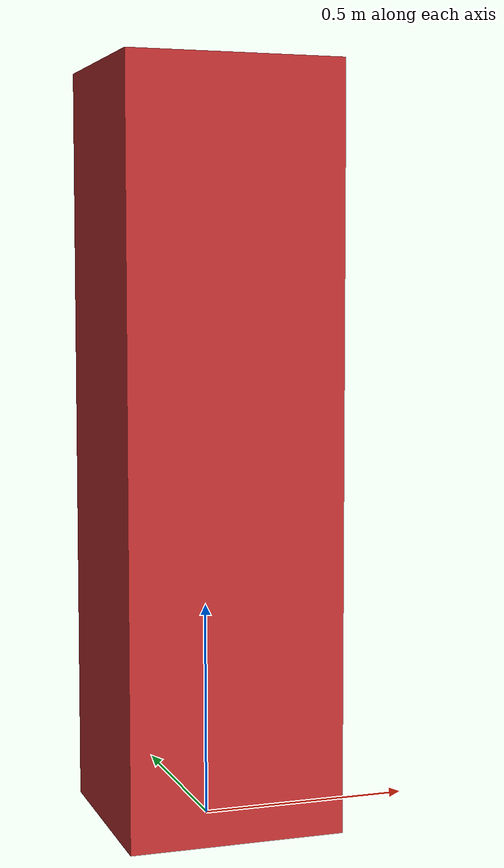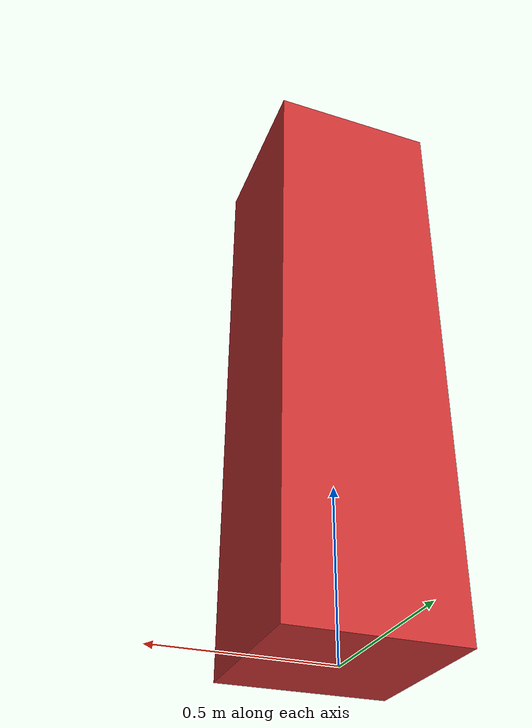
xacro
<!-- 行人 -->
<robot xmlns:xacro="http://www.ros.org/wiki/xacro" name="obs_person">
    <!-- 颜色 -->
    <material name="red">
        <color rgba="0.8 0.2 0.2 0.9"/>
    </material>

    <!-- 根坐标 -->
    <link name="map"/>

    <!-- 障碍行人生成函数, 参数: id号, 长宽高-->
    <xacro:macro name="create_obs_person" params="id person_length person_width person_height color">
        <!-- 底盘在map的投影点 -->
        <link name="base_footprint_person${id}"/>

        <!-- 底盘 -->
        <link name="base_link_person${id}">
            <visual>
                <geometry>
                    <box size="${person_length} ${person_width} ${person_height}"/>
                </geometry>
                <material name="${color}"/>
            </visual>
        </link>

        <!-- 投影点关联到地图 -->
        <joint name="footprint_person${id}_to_map" type="fixed">
            <parent link="map"/>
            <child link="base_footprint_person${id}"/>
        </joint>

        <!-- 底盘关联到投影点 -->
        <joint name="base_person${id}_to_footprint${id}" type="fixed">
            <parent link="base_footprint_person${id}"/>
            <child link="base_link_person${id}"/>
            <origin xyz="0.0 0.0 ${person_height / 2.0}"/>
        </joint>
    </xacro:macro>

    <!-- 调用函数 -->
    <xacro:create_obs_person id="1" person_length="0.5" person_width="0.5" person_height="1.75" color="red"/>
    <xacro:create_obs_person id="2" person_length="0.5" person_width="0.5" person_height="1.75" color="red"/>
    <xacro:create_obs_person id="3" person_length="0.5" person_width="0.5" person_height="1.75" color="red"/>
</robot>
